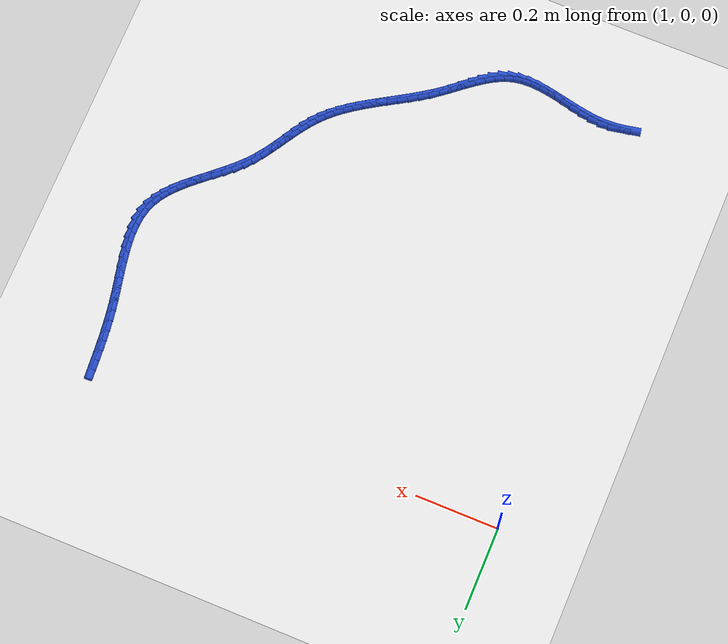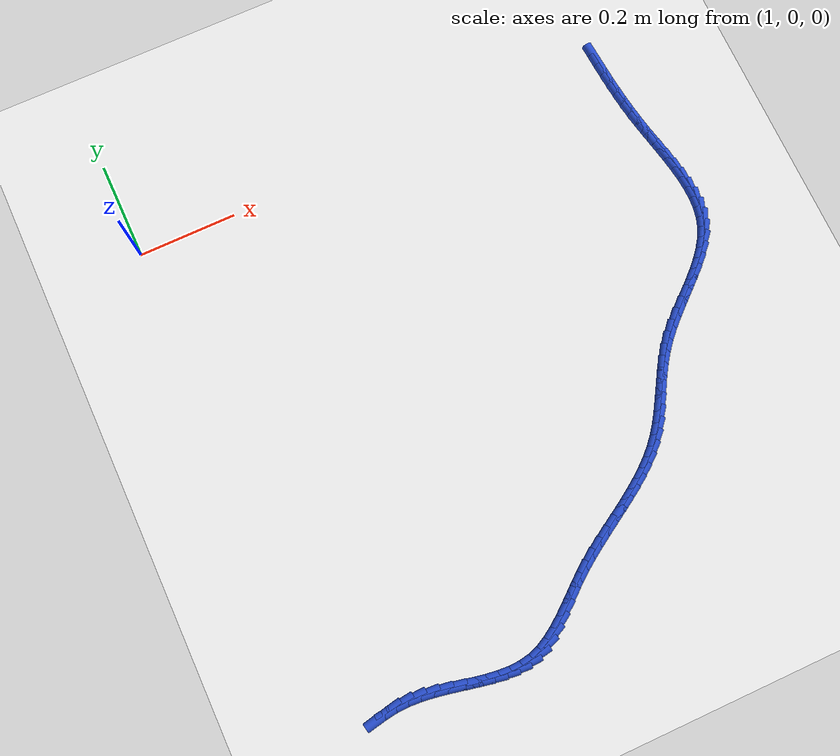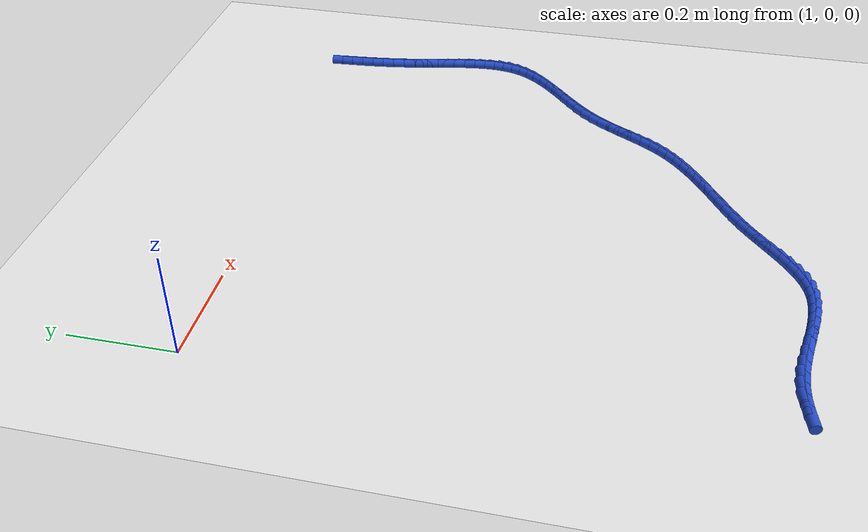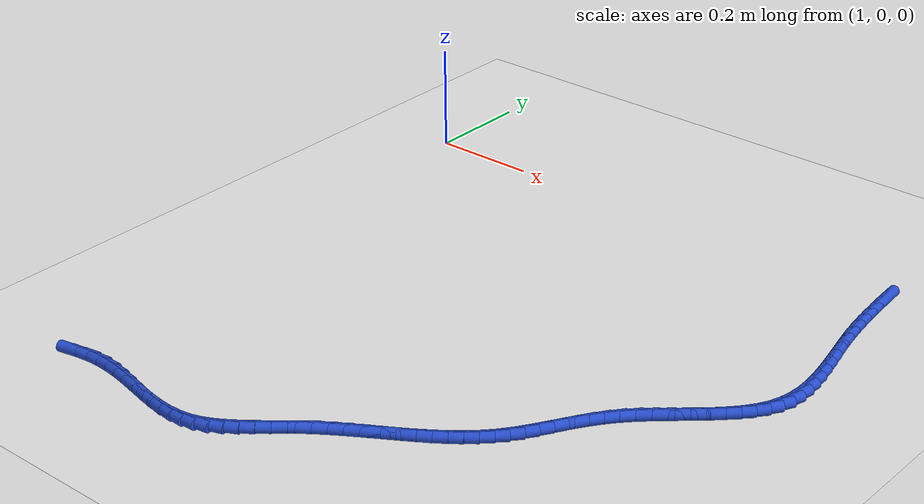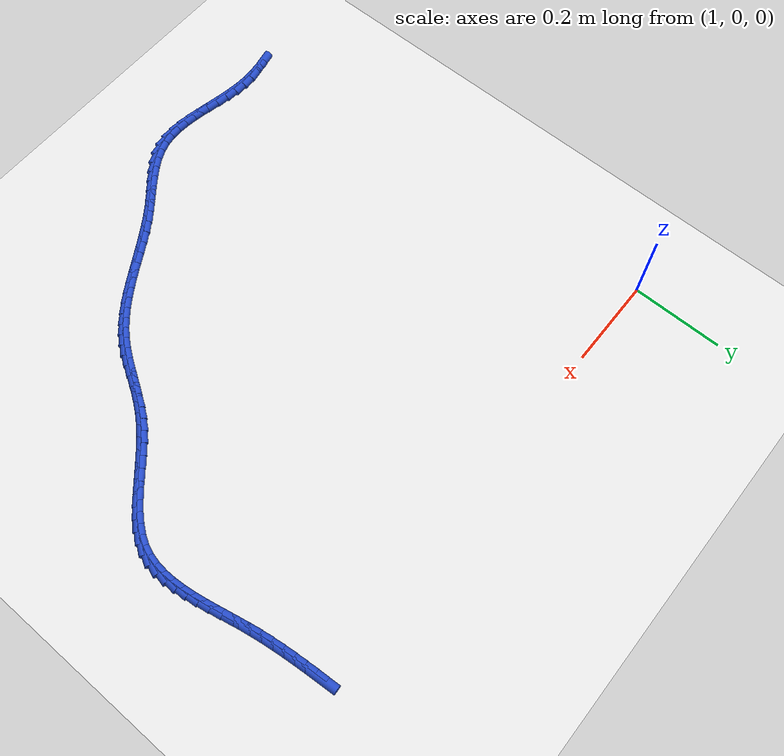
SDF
<sdf version="1.6">
 <world name="default">
  <model name="ground_plane">
   <static>1</static>
   <link name="link">
    <collision name="collision">
     <geometry><plane><normal>0 0 1</normal><size>100 100</size></plane></geometry>
     <surface><friction><ode><mu>100</mu><mu2>50</mu2></ode></friction></surface>
    </collision>
    <visual name="visual">
     <cast_shadows>0</cast_shadows>
     <geometry><plane><normal>0 0 1</normal><size>100 100</size></plane></geometry>
     <material>
      <script><uri>file://media/materials/scripts/gazebo.material</uri><name>Gazebo/WhiteGlow</name></script>
     </material>
    </visual>
   </link>
  </model>
  <model name="line">
   <link name="link_134">
    <pose>2.0039475441161843 -0.003080391109281294 0.01 0 1.57 -1.4930876298430524</pose>
    <collision name="collision">
     <geometry><cylinder><radius>0.01</radius><length>0.08</length></cylinder></geometry>
    </collision>
    <visual name="visual">
     <material>
      <script><name>Gazebo/Blue</name><uri>file://media/materials/scripts/gazebo.material</uri></script>
     </material>
     <geometry><cylinder><radius>0.01</radius><length>0.08</length></cylinder></geometry>
    </visual>
   </link>
   <link name="link_135">
    <pose>2.0058010913732818 -0.026884866767909223 0.01 0 1.57 -1.4820311629021532</pose>
    <collision name="collision">
     <geometry><cylinder><radius>0.01</radius><length>0.08</length></cylinder></geometry>
    </collision>
    <visual name="visual">
     <material>
      <script><name>Gazebo/Blue</name><uri>file://media/materials/scripts/gazebo.material</uri></script>
     </material>
     <geometry><cylinder><radius>0.01</radius><length>0.08</length></cylinder></geometry>
    </visual>
   </link>
   <link name="link_136">
    <pose>2.0079309128861667 -0.05081570491885802 0.01 0 1.57 -1.468094216260906</pose>
    <collision name="collision">
     <geometry><cylinder><radius>0.01</radius><length>0.08</length></cylinder></geometry>
    </collision>
    <visual name="visual">
     <material>
      <script><name>Gazebo/Blue</name><uri>file://media/materials/scripts/gazebo.material</uri></script>
     </material>
     <geometry><cylinder><radius>0.01</radius><length>0.08</length></cylinder></geometry>
    </visual>
   </link>
   <link name="link_137">
    <pose>2.0104138349257337 -0.07490660389739662 0.01 0 1.57 -1.4514205845544876</pose>
    <collision name="collision">
     <geometry><cylinder><radius>0.01</radius><length>0.08</length></cylinder></geometry>
    </collision>
    <visual name="visual">
     <material>
      <script><name>Gazebo/Blue</name><uri>file://media/materials/scripts/gazebo.material</uri></script>
     </material>
     <geometry><cylinder><radius>0.01</radius><length>0.08</length></cylinder></geometry>
    </visual>
   </link>
   <link name="link_138">
    <pose>2.013326683762878 -0.09919126203879645 0.01 0 1.57 -1.4321843335651283</pose>
    <collision name="collision">
     <geometry><cylinder><radius>0.01</radius><length>0.08</length></cylinder></geometry>
    </collision>
    <visual name="visual">
     <material>
      <script><name>Gazebo/Blue</name><uri>file://media/materials/scripts/gazebo.material</uri></script>
     </material>
     <geometry><cylinder><radius>0.01</radius><length>0.08</length></cylinder></geometry>
    </visual>
   </link>
   <link name="link_139">
    <pose>2.016746285668493 -0.12370337767832604 0.01 0 1.57 -1.4105884511494522</pose>
    <collision name="collision">
     <geometry><cylinder><radius>0.01</radius><length>0.08</length></cylinder></geometry>
    </collision>
    <visual name="visual">
     <material>
      <script><name>Gazebo/Blue</name><uri>file://media/materials/scripts/gazebo.material</uri></script>
     </material>
     <geometry><cylinder><radius>0.01</radius><length>0.08</length></cylinder></geometry>
    </visual>
   </link>
   <link name="link_140">
    <pose>2.0207494669134736 -0.14847664915125608 0.01 0 1.57 -1.3870622604256602</pose>
    <collision name="collision">
     <geometry><cylinder><radius>0.01</radius><length>0.08</length></cylinder></geometry>
    </collision>
    <visual name="visual">
     <material>
      <script><name>Gazebo/Blue</name><uri>file://media/materials/scripts/gazebo.material</uri></script>
     </material>
     <geometry><cylinder><radius>0.01</radius><length>0.08</length></cylinder></geometry>
    </visual>
   </link>
   <link name="link_141">
    <pose>2.0254074517888343 -0.17354250411472613 0.01 0 1.57 -1.3687187505225744</pose>
    <collision name="collision">
     <geometry><cylinder><radius>0.01</radius><length>0.08</length></cylinder></geometry>
    </collision>
    <visual name="visual">
     <material>
      <script><name>Gazebo/Blue</name><uri>file://media/materials/scripts/gazebo.material</uri></script>
     </material>
     <geometry><cylinder><radius>0.01</radius><length>0.08</length></cylinder></geometry>
    </visual>
   </link>
   <link name="link_142">
    <pose>2.0305926636585454 -0.19885178926573469 0.01 0 1.57 -1.363712634695002</pose>
    <collision name="collision">
     <geometry><cylinder><radius>0.01</radius><length>0.08</length></cylinder></geometry>
    </collision>
    <visual name="visual">
     <material>
      <script><name>Gazebo/Blue</name><uri>file://media/materials/scripts/gazebo.material</uri></script>
     </material>
     <geometry><cylinder><radius>0.01</radius><length>0.08</length></cylinder></geometry>
    </visual>
   </link>
   <link name="link_143">
    <pose>2.035929747596978 -0.22425491810524828 0.01 0 1.57 -1.3722688712926667</pose>
    <collision name="collision">
     <geometry><cylinder><radius>0.01</radius><length>0.08</length></cylinder></geometry>
    </collision>
    <visual name="visual">
     <material>
      <script><name>Gazebo/Blue</name><uri>file://media/materials/scripts/gazebo.material</uri></script>
     </material>
     <geometry><cylinder><radius>0.01</radius><length>0.08</length></cylinder></geometry>
    </visual>
   </link>
   <link name="link_144">
    <pose>2.0410278020539554 -0.249596002544236 0.01 0 1.57 -1.3947878173050283</pose>
    <collision name="collision">
     <geometry><cylinder><radius>0.01</radius><length>0.08</length></cylinder></geometry>
    </collision>
    <visual name="visual">
     <material>
      <script><name>Gazebo/Blue</name><uri>file://media/materials/scripts/gazebo.material</uri></script>
     </material>
     <geometry><cylinder><radius>0.01</radius><length>0.08</length></cylinder></geometry>
    </visual>
   </link>
   <link name="link_145">
    <pose>2.045495925479307 -0.27471915449367035 0.01 0 1.57 -1.4323985296912602</pose>
    <collision name="collision">
     <geometry><cylinder><radius>0.01</radius><length>0.08</length></cylinder></geometry>
    </collision>
    <visual name="visual">
     <material>
      <script><name>Gazebo/Blue</name><uri>file://media/materials/scripts/gazebo.material</uri></script>
     </material>
     <geometry><cylinder><radius>0.01</radius><length>0.08</length></cylinder></geometry>
    </visual>
   </link>
   <link name="link_146">
    <pose>2.048943216322856 -0.2994684858645206 0.01 0 1.57 -1.4869476186601762</pose>
    <collision name="collision">
     <geometry><cylinder><radius>0.01</radius><length>0.08</length></cylinder></geometry>
    </collision>
    <visual name="visual">
     <material>
      <script><name>Gazebo/Blue</name><uri>file://media/materials/scripts/gazebo.material</uri></script>
     </material>
     <geometry><cylinder><radius>0.01</radius><length>0.08</length></cylinder></geometry>
    </visual>
   </link>
   <link name="link_147">
    <pose>2.0509787730344295 -0.32368810856775904 0.01 0 1.57 -1.5608994470528499</pose>
    <collision name="collision">
     <geometry><cylinder><radius>0.01</radius><length>0.08</length></cylinder></geometry>
    </collision>
    <visual name="visual">
     <material>
      <script><name>Gazebo/Blue</name><uri>file://media/materials/scripts/gazebo.material</uri></script>
     </material>
     <geometry><cylinder><radius>0.01</radius><length>0.08</length></cylinder></geometry>
    </visual>
   </link>
   <link name="link_148">
    <pose>2.051211694063853 -0.347222134514355 0.01 0 1.57 1.4846112061160142</pose>
    <collision name="collision">
     <geometry><cylinder><radius>0.01</radius><length>0.08</length></cylinder></geometry>
    </collision>
    <visual name="visual">
     <material>
      <script><name>Gazebo/Blue</name><uri>file://media/materials/scripts/gazebo.material</uri></script>
     </material>
     <geometry><cylinder><radius>0.01</radius><length>0.08</length></cylinder></geometry>
    </visual>
   </link>
   <link name="link_149">
    <pose>2.0492510778609536 -0.3699146756152808 0.01 0 1.57 1.3642867156813012</pose>
    <collision name="collision">
     <geometry><cylinder><radius>0.01</radius><length>0.08</length></cylinder></geometry>
    </collision>
    <visual name="visual">
     <material>
      <script><name>Gazebo/Blue</name><uri>file://media/materials/scripts/gazebo.material</uri></script>
     </material>
     <geometry><cylinder><radius>0.01</radius><length>0.08</length></cylinder></geometry>
    </visual>
   </link>
   <link name="link_150">
    <pose>2.0447060228755567 -0.3916098437815059 0.01 0 1.57 1.2203253980853765</pose>
    <collision name="collision">
     <geometry><cylinder><radius>0.01</radius><length>0.08</length></cylinder></geometry>
    </collision>
    <visual name="visual">
     <material>
      <script><name>Gazebo/Blue</name><uri>file://media/materials/scripts/gazebo.material</uri></script>
     </material>
     <geometry><cylinder><radius>0.01</radius><length>0.08</length></cylinder></geometry>
    </visual>
   </link>
   <link name="link_151">
    <pose>2.0371951687041427 -0.4121558762869152 0.01 0 1.57 1.074506149562044</pose>
    <collision name="collision">
     <geometry><cylinder><radius>0.01</radius><length>0.08</length></cylinder></geometry>
    </collision>
    <visual name="visual">
     <material>
      <script><name>Gazebo/Blue</name><uri>file://media/materials/scripts/gazebo.material</uri></script>
     </material>
     <geometry><cylinder><radius>0.01</radius><length>0.08</length></cylinder></geometry>
    </visual>
   </link>
   <link name="link_152">
    <pose>2.026691142034122 -0.4315540659310563 0.01 0 1.57 0.9542056746053563</pose>
    <collision name="collision">
     <geometry><cylinder><radius>0.01</radius><length>0.08</length></cylinder></geometry>
    </collision>
    <visual name="visual">
     <material>
      <script><name>Gazebo/Blue</name><uri>file://media/materials/scripts/gazebo.material</uri></script>
     </material>
     <geometry><cylinder><radius>0.01</radius><length>0.08</length></cylinder></geometry>
    </visual>
   </link>
   <link name="link_153">
    <pose>2.013616852714167 -0.4500003971497252 0.01 0 1.57 0.8615699265253081</pose>
    <collision name="collision">
     <geometry><cylinder><radius>0.01</radius><length>0.08</length></cylinder></geometry>
    </collision>
    <visual name="visual">
     <material>
      <script><name>Gazebo/Blue</name><uri>file://media/materials/scripts/gazebo.material</uri></script>
     </material>
     <geometry><cylinder><radius>0.01</radius><length>0.08</length></cylinder></geometry>
    </visual>
   </link>
   <link name="link_154">
    <pose>1.9984243611670425 -0.46770345838760996 0.01 0 1.57 0.7945008664355379</pose>
    <collision name="collision">
     <geometry><cylinder><radius>0.01</radius><length>0.08</length></cylinder></geometry>
    </collision>
    <visual name="visual">
     <material>
      <script><name>Gazebo/Blue</name><uri>file://media/materials/scripts/gazebo.material</uri></script>
     </material>
     <geometry><cylinder><radius>0.01</radius><length>0.08</length></cylinder></geometry>
    </visual>
   </link>
   <link name="link_155">
    <pose>1.9815657278155125 -0.48487183808939655 0.01 0 1.57 0.7501720686988586</pose>
    <collision name="collision">
     <geometry><cylinder><radius>0.01</radius><length>0.08</length></cylinder></geometry>
    </collision>
    <visual name="visual">
     <material>
      <script><name>Gazebo/Blue</name><uri>file://media/materials/scripts/gazebo.material</uri></script>
     </material>
     <geometry><cylinder><radius>0.01</radius><length>0.08</length></cylinder></geometry>
    </visual>
   </link>
   <link name="link_156">
    <pose>1.963493013082341 -0.5017141246997728 0.01 0 1.57 0.7261318154686907</pose>
    <collision name="collision">
     <geometry><cylinder><radius>0.01</radius><length>0.08</length></cylinder></geometry>
    </collision>
    <visual name="visual">
     <material>
      <script><name>Gazebo/Blue</name><uri>file://media/materials/scripts/gazebo.material</uri></script>
     </material>
     <geometry><cylinder><radius>0.01</radius><length>0.08</length></cylinder></geometry>
    </visual>
   </link>
   <link name="link_157">
    <pose>1.9446582773902927 -0.5184389066634248 0.01 0 1.57 0.7207277899946483</pose>
    <collision name="collision">
     <geometry><cylinder><radius>0.01</radius><length>0.08</length></cylinder></geometry>
    </collision>
    <visual name="visual">
     <material>
      <script><name>Gazebo/Blue</name><uri>file://media/materials/scripts/gazebo.material</uri></script>
     </material>
     <geometry><cylinder><radius>0.01</radius><length>0.08</length></cylinder></geometry>
    </visual>
   </link>
   <link name="link_158">
    <pose>1.9255135811621324 -0.5352547724250406 0.01 0 1.57 0.7331987870016564</pose>
    <collision name="collision">
     <geometry><cylinder><radius>0.01</radius><length>0.08</length></cylinder></geometry>
    </collision>
    <visual name="visual">
     <material>
      <script><name>Gazebo/Blue</name><uri>file://media/materials/scripts/gazebo.material</uri></script>
     </material>
     <geometry><cylinder><radius>0.01</radius><length>0.08</length></cylinder></geometry>
    </visual>
   </link>
   <link name="link_159">
    <pose>1.9065109848206232 -0.5523703104293058 0.01 0 1.57 0.7636256211589005</pose>
    <collision name="collision">
     <geometry><cylinder><radius>0.01</radius><length>0.08</length></cylinder></geometry>
    </collision>
    <visual name="visual">
     <material>
      <script><name>Gazebo/Blue</name><uri>file://media/materials/scripts/gazebo.material</uri></script>
     </material>
     <geometry><cylinder><radius>0.01</radius><length>0.08</length></cylinder></geometry>
    </visual>
   </link>
   <link name="link_160">
    <pose>1.8881025487885297 -0.569994109120908 0.01 0 1.57 0.812796181519844</pose>
    <collision name="collision">
     <geometry><cylinder><radius>0.01</radius><length>0.08</length></cylinder></geometry>
    </collision>
    <visual name="visual">
     <material>
      <script><name>Gazebo/Blue</name><uri>file://media/materials/scripts/gazebo.material</uri></script>
     </material>
     <geometry><cylinder><radius>0.01</radius><length>0.08</length></cylinder></geometry>
    </visual>
   </link>
   <link name="link_161">
    <pose>1.870740333488616 -0.5883347569445347 0.01 0 1.57 0.8804869737948807</pose>
    <collision name="collision">
     <geometry><cylinder><radius>0.01</radius><length>0.08</length></cylinder></geometry>
    </collision>
    <visual name="visual">
     <material>
      <script><name>Gazebo/Blue</name><uri>file://media/materials/scripts/gazebo.material</uri></script>
     </material>
     <geometry><cylinder><radius>0.01</radius><length>0.08</length></cylinder></geometry>
    </visual>
   </link>
   <link name="link_162">
    <pose>1.854845082855996 -0.6075817498209236 0.01 0 1.57 0.9460548275299694</pose>
    <collision name="collision">
     <geometry><cylinder><radius>0.01</radius><length>0.08</length></cylinder></geometry>
    </collision>
    <visual name="visual">
     <material>
      <script><name>Gazebo/Blue</name><uri>file://media/materials/scripts/gazebo.material</uri></script>
     </material>
     <geometry><cylinder><radius>0.01</radius><length>0.08</length></cylinder></geometry>
    </visual>
   </link>
   <link name="link_163">
    <pose>1.8403780444924358 -0.6276444454622693 0.01 0 1.57 0.9926117401558303</pose>
    <collision name="collision">
     <geometry><cylinder><radius>0.01</radius><length>0.08</length></cylinder></geometry>
    </collision>
    <visual name="visual">
     <material>
      <script><name>Gazebo/Blue</name><uri>file://media/materials/scripts/gazebo.material</uri></script>
     </material>
     <geometry><cylinder><radius>0.01</radius><length>0.08</length></cylinder></geometry>
    </visual>
   </link>
   <link name="link_164">
    <pose>1.8269513375387634 -0.6482193506513837 0.01 0 1.57 1.0192695946846335</pose>
    <collision name="collision">
     <geometry><cylinder><radius>0.01</radius><length>0.08</length></cylinder></geometry>
    </collision>
    <visual name="visual">
     <material>
      <script><name>Gazebo/Blue</name><uri>file://media/materials/scripts/gazebo.material</uri></script>
     </material>
     <geometry><cylinder><radius>0.01</radius><length>0.08</length></cylinder></geometry>
    </visual>
   </link>
   <link name="link_165">
    <pose>1.8141683616580235 -0.668997656222491 0.01 0 1.57 1.0256912830320288</pose>
    <collision name="collision">
     <geometry><cylinder><radius>0.01</radius><length>0.08</length></cylinder></geometry>
    </collision>
    <visual name="visual">
     <material>
      <script><name>Gazebo/Blue</name><uri>file://media/materials/scripts/gazebo.material</uri></script>
     </material>
     <geometry><cylinder><radius>0.01</radius><length>0.08</length></cylinder></geometry>
    </visual>
   </link>
   <link name="link_166">
    <pose>1.8016325165132638 -0.6896705530098131 0.01 0 1.57 1.0113583104144124</pose>
    <collision name="collision">
     <geometry><cylinder><radius>0.01</radius><length>0.08</length></cylinder></geometry>
    </collision>
    <visual name="visual">
     <material>
      <script><name>Gazebo/Blue</name><uri>file://media/materials/scripts/gazebo.material</uri></script>
     </material>
     <geometry><cylinder><radius>0.01</radius><length>0.08</length></cylinder></geometry>
    </visual>
   </link>
   <link name="link_167">
    <pose>1.7889472017675279 -0.7099292318475742 0.01 0 1.57 0.9754722057474319</pose>
    <collision name="collision">
     <geometry><cylinder><radius>0.01</radius><length>0.08</length></cylinder></geometry>
    </collision>
    <visual name="visual">
     <material>
      <script><name>Gazebo/Blue</name><uri>file://media/materials/scripts/gazebo.material</uri></script>
     </material>
     <geometry><cylinder><radius>0.01</radius><length>0.08</length></cylinder></geometry>
    </visual>
   </link>
   <link name="link_168">
    <pose>1.7757158170838618 -0.7294648835699961 0.01 0 1.57 0.9171291046013085</pose>
    <collision name="collision">
     <geometry><cylinder><radius>0.01</radius><length>0.08</length></cylinder></geometry>
    </collision>
    <visual name="visual">
     <material>
      <script><name>Gazebo/Blue</name><uri>file://media/materials/scripts/gazebo.material</uri></script>
     </material>
     <geometry><cylinder><radius>0.01</radius><length>0.08</length></cylinder></geometry>
    </visual>
   </link>
   <link name="link_169">
    <pose>1.7615417621253107 -0.7479686990113027 0.01 0 1.57 0.839831017675712</pose>
    <collision name="collision">
     <geometry><cylinder><radius>0.01</radius><length>0.08</length></cylinder></geometry>
    </collision>
    <visual name="visual">
     <material>
      <script><name>Gazebo/Blue</name><uri>file://media/materials/scripts/gazebo.material</uri></script>
     </material>
     <geometry><cylinder><radius>0.01</radius><length>0.08</length></cylinder></geometry>
    </visual>
   </link>
   <link name="link_170">
    <pose>1.746096660569212 -0.7651938966536415 0.01 0 1.57 0.7653653462966353</pose>
    <collision name="collision">
     <geometry><cylinder><radius>0.01</radius><length>0.08</length></cylinder></geometry>
    </collision>
    <visual name="visual">
     <material>
      <script><name>Gazebo/Blue</name><uri>file://media/materials/scripts/gazebo.material</uri></script>
     </material>
     <geometry><cylinder><radius>0.01</radius><length>0.08</length></cylinder></geometry>
    </visual>
   </link>
   <link name="link_171">
    <pose>1.7294131998844569 -0.7812219655738097 0.01 0 1.57 0.7017435442235451</pose>
    <collision name="collision">
     <geometry><cylinder><radius>0.01</radius><length>0.08</length></cylinder></geometry>
    </collision>
    <visual name="visual">
     <material>
      <script><name>Gazebo/Blue</name><uri>file://media/materials/scripts/gazebo.material</uri></script>
     </material>
     <geometry><cylinder><radius>0.01</radius><length>0.08</length></cylinder></geometry>
    </visual>
   </link>
   <link name="link_172">
    <pose>1.7116430656042003 -0.7962425850527545 0.01 0 1.57 0.6494324212131685</pose>
    <collision name="collision">
     <geometry><cylinder><radius>0.01</radius><length>0.08</length></cylinder></geometry>
    </collision>
    <visual name="visual">
     <material>
      <script><name>Gazebo/Blue</name><uri>file://media/materials/scripts/gazebo.material</uri></script>
     </material>
     <geometry><cylinder><radius>0.01</radius><length>0.08</length></cylinder></geometry>
    </visual>
   </link>
   <link name="link_173">
    <pose>1.6929380164419394 -0.810445500905241 0.01 0 1.57 0.6084222729301587</pose>
    <collision name="collision">
     <geometry><cylinder><radius>0.01</radius><length>0.08</length></cylinder></geometry>
    </collision>
    <visual name="visual">
     <material>
      <script><name>Gazebo/Blue</name><uri>file://media/materials/scripts/gazebo.material</uri></script>
     </material>
     <geometry><cylinder><radius>0.01</radius><length>0.08</length></cylinder></geometry>
    </visual>
   </link>
   <link name="link_174">
    <pose>1.67344981111117 -0.8240204589460363 0.01 0 1.57 0.578434092305773</pose>
    <collision name="collision">
     <geometry><cylinder><radius>0.01</radius><length>0.08</length></cylinder></geometry>
    </collision>
    <visual name="visual">
     <material>
      <script><name>Gazebo/Blue</name><uri>file://media/materials/scripts/gazebo.material</uri></script>
     </material>
     <geometry><cylinder><radius>0.01</radius><length>0.08</length></cylinder></geometry>
    </visual>
   </link>
   <link name="link_175">
    <pose>1.653330208325387 -0.8371572049899052 0.01 0 1.57 0.5590793078821561</pose>
    <collision name="collision">
     <geometry><cylinder><radius>0.01</radius><length>0.08</length></cylinder></geometry>
    </collision>
    <visual name="visual">
     <material>
      <script><name>Gazebo/Blue</name><uri>file://media/materials/scripts/gazebo.material</uri></script>
     </material>
     <geometry><cylinder><radius>0.01</radius><length>0.08</length></cylinder></geometry>
    </visual>
   </link>
   <link name="link_176">
    <pose>1.632730966798085 -0.8500454848516146 0.01 0 1.57 0.5499663865988801</pose>
    <collision name="collision">
     <geometry><cylinder><radius>0.01</radius><length>0.08</length></cylinder></geometry>
    </collision>
    <visual name="visual">
     <material>
      <script><name>Gazebo/Blue</name><uri>file://media/materials/scripts/gazebo.material</uri></script>
     </material>
     <geometry><cylinder><radius>0.01</radius><length>0.08</length></cylinder></geometry>
    </visual>
   </link>
   <link name="link_177">
    <pose>1.6118038452427608 -0.8628750443459298 0.01 0 1.57 0.5507599703401227</pose>
    <collision name="collision">
     <geometry><cylinder><radius>0.01</radius><length>0.08</length></cylinder></geometry>
    </collision>
    <visual name="visual">
     <material>
      <script><name>Gazebo/Blue</name><uri>file://media/materials/scripts/gazebo.material</uri></script>
     </material>
     <geometry><cylinder><radius>0.01</radius><length>0.08</length></cylinder></geometry>
    </visual>
   </link>
   <link name="link_178">
    <pose>1.5907006023729096 -0.8758356292876177 0.01 0 1.57 0.5612023271721637</pose>
    <collision name="collision">
     <geometry><cylinder><radius>0.01</radius><length>0.08</length></cylinder></geometry>
    </collision>
    <visual name="visual">
     <material>
      <script><name>Gazebo/Blue</name><uri>file://media/materials/scripts/gazebo.material</uri></script>
     </material>
     <geometry><cylinder><radius>0.01</radius><length>0.08</length></cylinder></geometry>
    </visual>
   </link>
   <link name="link_179">
    <pose>1.5695729969020267 -0.8891169854914436 0.01 0 1.57 0.5811052885384421</pose>
    <collision name="collision">
     <geometry><cylinder><radius>0.01</radius><length>0.08</length></cylinder></geometry>
    </collision>
    <visual name="visual">
     <material>
      <script><name>Gazebo/Blue</name><uri>file://media/materials/scripts/gazebo.material</uri></script>
     </material>
     <geometry><cylinder><radius>0.01</radius><length>0.08</length></cylinder></geometry>
    </visual>
   </link>
   <link name="link_180">
    <pose>1.5485727875436073 -0.9029088587721738 0.01 0 1.57 0.6103176774906657</pose>
    <collision name="collision">
     <geometry><cylinder><radius>0.01</radius><length>0.08</length></cylinder></geometry>
    </collision>
    <visual name="visual">
     <material>
      <script><name>Gazebo/Blue</name><uri>file://media/materials/scripts/gazebo.material</uri></script>
     </material>
     <geometry><cylinder><radius>0.01</radius><length>0.08</length></cylinder></geometry>
    </visual>
   </link>
   <link name="link_181">
    <pose>1.5278517330111474 -0.917400994944574 0.01 0 1.57 0.6481726306359343</pose>
    <collision name="collision">
     <geometry><cylinder><radius>0.01</radius><length>0.08</length></cylinder></geometry>
    </collision>
    <visual name="visual">
     <material>
      <script><name>Gazebo/Blue</name><uri>file://media/materials/scripts/gazebo.material</uri></script>
     </material>
     <geometry><cylinder><radius>0.01</radius><length>0.08</length></cylinder></geometry>
    </visual>
   </link>
   <link name="link_182">
    <pose>1.5075565980804282 -0.9327710074018477 0.01 0 1.57 0.679723262463977</pose>
    <collision name="collision">
     <geometry><cylinder><radius>0.01</radius><length>0.08</length></cylinder></geometry>
    </collision>
    <visual name="visual">
     <material>
      <script><name>Gazebo/Blue</name><uri>file://media/materials/scripts/gazebo.material</uri></script>
     </material>
     <geometry><cylinder><radius>0.01</radius><length>0.08</length></cylinder></geometry>
    </visual>
   </link>
   <link name="link_183">
    <pose>1.487684117210974 -0.9488320214021718 0.01 0 1.57 0.6884188946973874</pose>
    <collision name="collision">
     <geometry><cylinder><radius>0.01</radius><length>0.08</length></cylinder></geometry>
    </collision>
    <visual name="visual">
     <material>
      <script><name>Gazebo/Blue</name><uri>file://media/materials/scripts/gazebo.material</uri></script>
     </material>
     <geometry><cylinder><radius>0.01</radius><length>0.08</length></cylinder></geometry>
    </visual>
   </link>
   <link name="link_184">
    <pose>1.4680583854235378 -0.9649777467906098 0.01 0 1.57 0.6731624148559585</pose>
    <collision name="collision">
     <geometry><cylinder><radius>0.01</radius><length>0.08</length></cylinder></geometry>
    </collision>
    <visual name="visual">
     <material>
      <script><name>Gazebo/Blue</name><uri>file://media/materials/scripts/gazebo.material</uri></script>
     </material>
     <geometry><cylinder><radius>0.01</radius><length>0.08</length></cylinder></geometry>
    </visual>
   </link>
   <link name="link_185">
    <pose>1.4484939540292223 -0.9805787076387328 0.01 0 1.57 0.63236653930945</pose>
    <collision name="collision">
     <geometry><cylinder><radius>0.01</radius><length>0.08</length></cylinder></geometry>
    </collision>
    <visual name="visual">
     <material>
      <script><name>Gazebo/Blue</name><uri>file://media/materials/scripts/gazebo.material</uri></script>
     </material>
     <geometry><cylinder><radius>0.01</radius><length>0.08</length></cylinder></geometry>
    </visual>
   </link>
   <link name="link_186">
    <pose>1.4288053743391345 -0.9950054280181103 0.01 0 1.57 0.5630508617118855</pose>
    <collision name="collision">
     <geometry><cylinder><radius>0.01</radius><length>0.08</length></cylinder></geometry>
    </collision>
    <visual name="visual">
     <material>
      <script><name>Gazebo/Blue</name><uri>file://media/materials/scripts/gazebo.material</uri></script>
     </material>
     <geometry><cylinder><radius>0.01</radius><length>0.08</length></cylinder></geometry>
    </visual>
   </link>
   <link name="link_187">
    <pose>1.4088071976643777 -1.0076284320003135 0.01 0 1.57 0.46142785209328036</pose>
    <collision name="collision">
     <geometry><cylinder><radius>0.01</radius><length>0.08</length></cylinder></geometry>
    </collision>
    <visual name="visual">
     <material>
      <script><name>Gazebo/Blue</name><uri>file://media/materials/scripts/gazebo.material</uri></script>
     </material>
     <geometry><cylinder><radius>0.01</radius><length>0.08</length></cylinder></geometry>
    </visual>
   </link>
   <link name="link_188">
    <pose>1.388313975316059 -1.0178182436569123 0.01 0 1.57 0.324702268805501</pose>
    <collision name="collision">
     <geometry><cylinder><radius>0.01</radius><length>0.08</length></cylinder></geometry>
    </collision>
    <visual name="visual">
     <material>
      <script><name>Gazebo/Blue</name><uri>file://media/materials/scripts/gazebo.material</uri></script>
     </material>
     <geometry><cylinder><radius>0.01</radius><length>0.08</length></cylinder></geometry>
    </visual>
   </link>
   <link name="link_189">
    <pose>1.367140318408343 -1.0249456407631214 0.01 0 1.57 0.1673670782842159</pose>
    <collision name="collision">
     <geometry><cylinder><radius>0.01</radius><length>0.08</length></cylinder></geometry>
    </collision>
    <visual name="visual">
     <material>
      <script><name>Gazebo/Blue</name><uri>file://media/materials/scripts/gazebo.material</uri></script>
     </material>
     <geometry><cylinder><radius>0.01</radius><length>0.08</length></cylinder></geometry>
    </visual>
   </link>
   <link name="link_190">
    <pose>1.3451660700260388 -1.028658135901185 0.01 0 1.57 0.03300543656285654</pose>
    <collision name="collision">
     <geometry><cylinder><radius>0.01</radius><length>0.08</length></cylinder></geometry>
    </collision>
    <visual name="visual">
     <material>
      <script><name>Gazebo/Blue</name><uri>file://media/materials/scripts/gazebo.material</uri></script>
     </material>
     <geometry><cylinder><radius>0.01</radius><length>0.08</length></cylinder></geometry>
    </visual>
   </link>
   <link name="link_191">
    <pose>1.3224607257414156 -1.029407807942003 0.01 0 1.57 -0.0691345905039265</pose>
    <collision name="collision">
     <geometry><cylinder><radius>0.01</radius><length>0.08</length></cylinder></geometry>
    </collision>
    <visual name="visual">
     <material>
      <script><name>Gazebo/Blue</name><uri>file://media/materials/scripts/gazebo.material</uri></script>
     </material>
     <geometry><cylinder><radius>0.01</radius><length>0.08</length></cylinder></geometry>
    </visual>
   </link>
   <link name="link_192">
    <pose>1.299128055468537 -1.027792138436613 0.01 0 1.57 -0.1408903478859516</pose>
    <collision name="collision">
     <geometry><cylinder><radius>0.01</radius><length>0.08</length></cylinder></geometry>
    </collision>
    <visual name="visual">
     <material>
      <script><name>Gazebo/Blue</name><uri>file://media/materials/scripts/gazebo.material</uri></script>
     </material>
     <geometry><cylinder><radius>0.01</radius><length>0.08</length></cylinder></geometry>
    </visual>
   </link>
   <link name="link_193">
    <pose>1.2752718291214653 -1.0244086089360551 0.01 0 1.57 -0.18543372837661629</pose>
    <collision name="collision">
     <geometry><cylinder><radius>0.01</radius><length>0.08</length></cylinder></geometry>
    </collision>
    <visual name="visual">
     <material>
      <script><name>Gazebo/Blue</name><uri>file://media/materials/scripts/gazebo.material</uri></script>
     </material>
     <geometry><cylinder><radius>0.01</radius><length>0.08</length></cylinder></geometry>
    </visual>
   </link>
   <link name="link_194">
    <pose>1.2509958166142625 -1.0198547009913668 0.01 0 1.57 -0.20553044370601162</pose>
    <collision name="collision">
     <geometry><cylinder><radius>0.01</radius><length>0.08</length></cylinder></geometry>
    </collision>
    <visual name="visual">
     <material>
      <script><name>Gazebo/Blue</name><uri>file://media/materials/scripts/gazebo.material</uri></script>
     </material>
     <geometry><cylinder><radius>0.01</radius><length>0.08</length></cylinder></geometry>
    </visual>
   </link>
   <link name="link_195">
    <pose>1.2264037878609926 -1.014727896153587 0.01 0 1.57 -0.2028695303561621</pose>
    <collision name="collision">
     <geometry><cylinder><radius>0.01</radius><length>0.08</length></cylinder></geometry>
    </collision>
    <visual name="visual">
     <material>
      <script><name>Gazebo/Blue</name><uri>file://media/materials/scripts/gazebo.material</uri></script>
     </material>
     <geometry><cylinder><radius>0.01</radius><length>0.08</length></cylinder></geometry>
    </visual>
   </link>
   <link name="link_196">
    <pose>1.2015995127757169 -1.0096256759737545 0.01 0 1.57 -0.1779319183299907</pose>
    <collision name="collision">
     <geometry><cylinder><radius>0.01</radius><length>0.08</length></cylinder></geometry>
    </collision>
    <visual name="visual">
     <material>
      <script><name>Gazebo/Blue</name><uri>file://media/materials/scripts/gazebo.material</uri></script>
     </material>
     <geometry><cylinder><radius>0.01</radius><length>0.08</length></cylinder></geometry>
    </visual>
   </link>
   <link name="link_197">
    <pose>1.1766867612724994 -1.005145522002908 0.01 0 1.57 -0.13011697481761997</pose>
    <collision name="collision">
     <geometry><cylinder><radius>0.01</radius><length>0.08</length></cylinder></geometry>
    </collision>
    <visual name="visual">
     <material>
      <script><name>Gazebo/Blue</name><uri>file://media/materials/scripts/gazebo.material</uri></script>
     </material>
     <geometry><cylinder><radius>0.01</radius><length>0.08</length></cylinder></geometry>
    </visual>
   </link>
   <link name="link_198">
    <pose>1.151769303265401 -1.001884915792086 0.01 0 1.57 -0.058100140324694786</pose>
    <collision name="collision">
     <geometry><cylinder><radius>0.01</radius><length>0.08</length></cylinder></geometry>
    </collision>
    <visual name="visual">
     <material>
      <script><name>Gazebo/Blue</name><uri>file://media/materials/scripts/gazebo.material</uri></script>
     </material>
     <geometry><cylinder><radius>0.01</radius><length>0.08</length></cylinder></geometry>
    </visual>
   </link>
   <link name="link_199">
    <pose>1.1269509086684864 -1.0004413388923272 0.01 0 1.57 0.03773209490670491</pose>
    <collision name="collision">
     <geometry><cylinder><radius>0.01</radius><length>0.08</length></cylinder></geometry>
    </collision>
    <visual name="visual">
     <material>
      <script><name>Gazebo/Blue</name><uri>file://media/materials/scripts/gazebo.material</uri></script>
     </material>
     <geometry><cylinder><radius>0.01</radius><length>0.08</length></cylinder></geometry>
    </visual>
   </link>
   <link name="link_200">
    <pose>1.1023315902029176 -1.0013707184510392 0.01 0 1.57 0.13026394599259947</pose>
    <collision name="collision">
     <geometry><cylinder><radius>0.01</radius><length>0.08</length></cylinder></geometry>
    </collision>
    <visual name="visual">
     <material>
      <script><name>Gazebo/Blue</name><uri>file://media/materials/scripts/gazebo.material</uri></script>
     </material>
     <geometry><cylinder><radius>0.01</radius><length>0.08</length></cylinder></geometry>
    </visual>
   </link>
   <link name="link_201">
    <pose>1.0779512967485674 -1.004564677926178 0.01 0 1.57 0.1968459314392095</pose>
    <collision name="collision">
     <geometry><cylinder><radius>0.01</radius><length>0.08</length></cylinder></geometry>
    </collision>
    <visual name="visual">
     <material>
      <script><name>Gazebo/Blue</name><uri>file://media/materials/scripts/gazebo.material</uri></script>
     </material>
     <geometry><cylinder><radius>0.01</radius><length>0.08</length></cylinder></geometry>
    </visual>
   </link>
  </model>
 </world>
</sdf>
